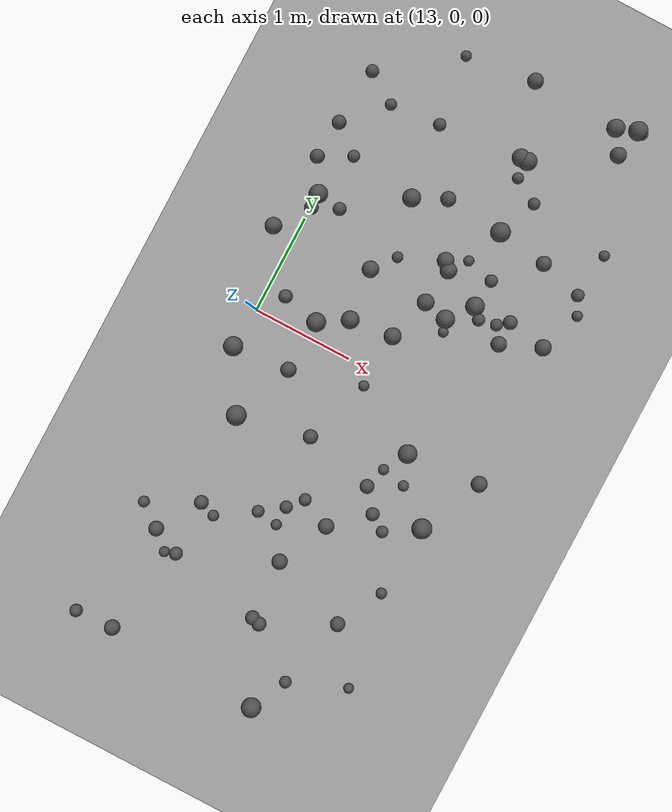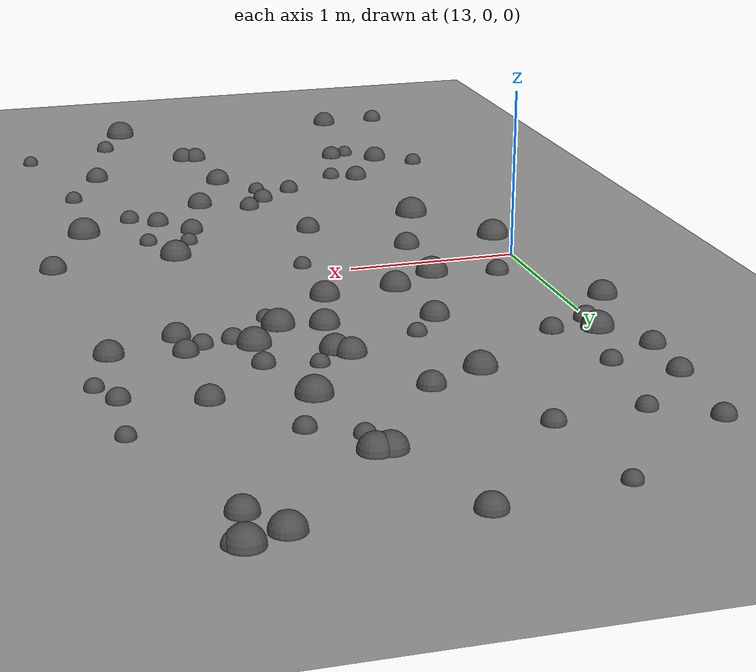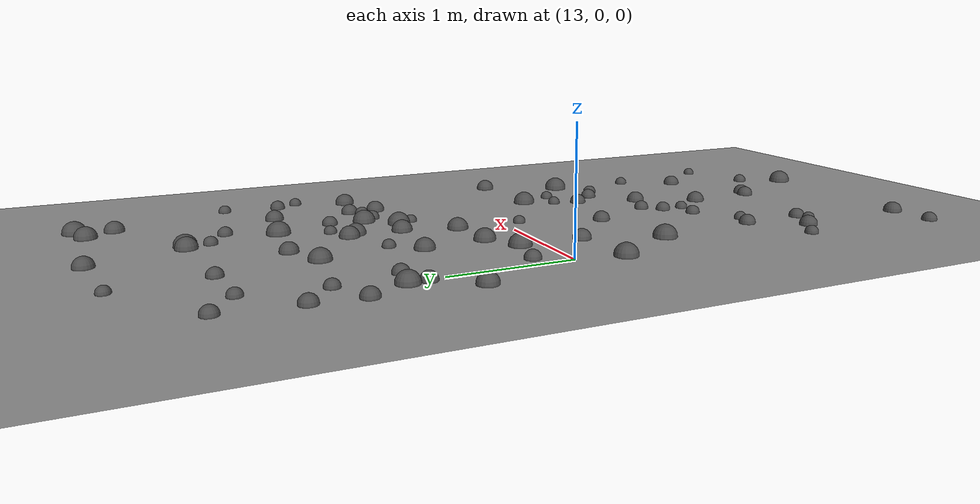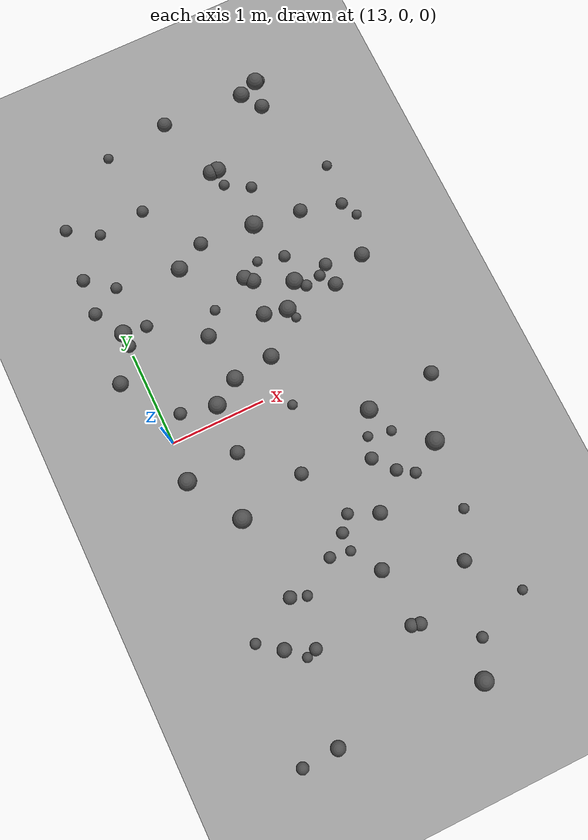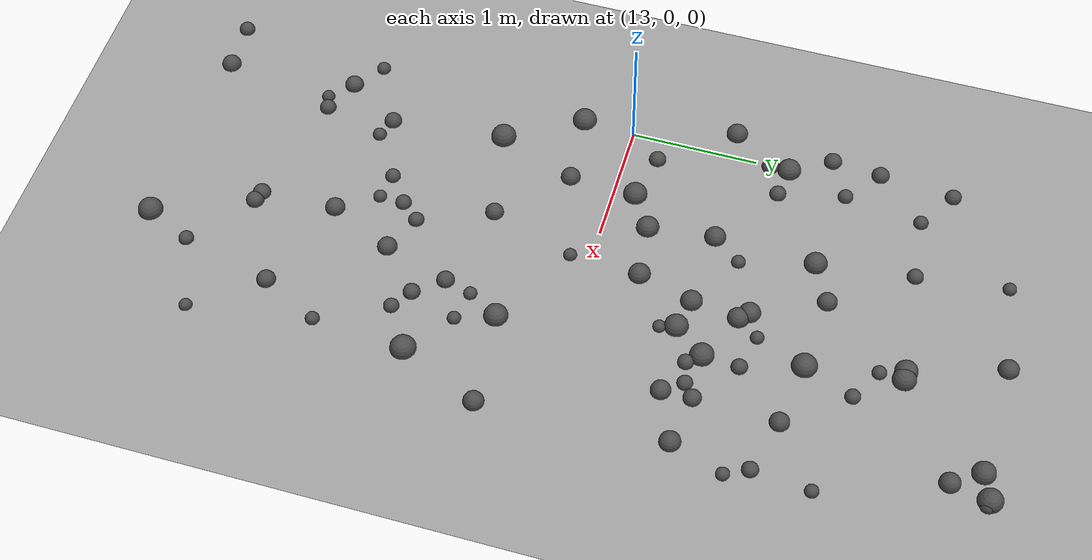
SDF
<sdf version="1.8">
 <world name="bumpy_world">
  <model name="ground_plane">
   <static>true</static>
   <link name="link">
    <collision name="collision">
     <geometry><plane><normal>0 0 1</normal><size>100 100</size></plane></geometry>
    </collision>
    <visual name="visual">
     <geometry><plane><normal>0 0 1</normal><size>100 100</size></plane></geometry>
     <material><ambient>0.6 0.6 0.6 1</ambient><diffuse>0.6 0.6 0.6 1</diffuse></material>
    </visual>
   </link>
  </model>
  <model name="bump_2">
   <static>true</static>
   <pose>13.304579363777297 -2.464975682810359 0.0 0 0 0</pose>
   <link name="link">
    <collision name="collision">
     <geometry><sphere><radius>0.051483868694990956</radius></sphere></geometry>
     <surface><friction><ode><mu>100.0</mu><mu2>100.0</mu2></ode></friction></surface>
    </collision>
    <visual name="visual">
     <geometry><sphere><radius>0.051483868694990956</radius></sphere></geometry>
     <material><ambient>0.3 0.3 0.3 1</ambient><diffuse>0.3 0.3 0.3 1</diffuse></material>
    </visual>
   </link>
  </model>
  <model name="bump_5">
   <static>true</static>
   <pose>14.562588807561559 2.482431439217339 0.0 0 0 0</pose>
   <link name="link">
    <collision name="collision">
     <geometry><sphere><radius>0.08768449537127662</radius></sphere></geometry>
     <surface><friction><ode><mu>100.0</mu><mu2>100.0</mu2></ode></friction></surface>
    </collision>
    <visual name="visual">
     <geometry><sphere><radius>0.08768449537127662</radius></sphere></geometry>
     <material><ambient>0.3 0.3 0.3 1</ambient><diffuse>0.3 0.3 0.3 1</diffuse></material>
    </visual>
   </link>
  </model>
  <model name="bump_21">
   <static>true</static>
   <pose>14.635420288345205 2.481698815405207 0.0 0 0 0</pose>
   <link name="link">
    <collision name="collision">
     <geometry><sphere><radius>0.09113718749873549</radius></sphere></geometry>
     <surface><friction><ode><mu>100.0</mu><mu2>100.0</mu2></ode></friction></surface>
    </collision>
    <visual name="visual">
     <geometry><sphere><radius>0.09113718749873549</radius></sphere></geometry>
     <material><ambient>0.3 0.3 0.3 1</ambient><diffuse>0.3 0.3 0.3 1</diffuse></material>
    </visual>
   </link>
  </model>
  <model name="bump_34">
   <static>true</static>
   <pose>15.211453152067746 1.0342373390313409 0.0 0 0 0</pose>
   <link name="link">
    <collision name="collision">
     <geometry><sphere><radius>0.06985104177228421</radius></sphere></geometry>
     <surface><friction><ode><mu>100.0</mu><mu2>100.0</mu2></ode></friction></surface>
    </collision>
    <visual name="visual">
     <geometry><sphere><radius>0.06985104177228421</radius></sphere></geometry>
     <material><ambient>0.3 0.3 0.3 1</ambient><diffuse>0.3 0.3 0.3 1</diffuse></material>
    </visual>
   </link>
  </model>
  <model name="bump_35">
   <static>true</static>
   <pose>15.387912402151585 -1.1148408915079688 0.0 0 0 0</pose>
   <link name="link">
    <collision name="collision">
     <geometry><sphere><radius>0.09988870792115631</radius></sphere></geometry>
     <surface><friction><ode><mu>100.0</mu><mu2>100.0</mu2></ode></friction></surface>
    </collision>
    <visual name="visual">
     <geometry><sphere><radius>0.09988870792115631</radius></sphere></geometry>
     <material><ambient>0.3 0.3 0.3 1</ambient><diffuse>0.3 0.3 0.3 1</diffuse></material>
    </visual>
   </link>
  </model>
  <model name="bump_41">
   <static>true</static>
   <pose>13.186478670259566 0.24808822148255016 0.0 0 0 0</pose>
   <link name="link">
    <collision name="collision">
     <geometry><sphere><radius>0.06720600954557636</radius></sphere></geometry>
     <surface><friction><ode><mu>100.0</mu><mu2>100.0</mu2></ode></friction></surface>
    </collision>
    <visual name="visual">
     <geometry><sphere><radius>0.06720600954557636</radius></sphere></geometry>
     <material><ambient>0.3 0.3 0.3 1</ambient><diffuse>0.3 0.3 0.3 1</diffuse></material>
    </visual>
   </link>
  </model>
  <model name="bump_42">
   <static>true</static>
   <pose>15.48329186325271 -2.7985686660390834 0.0 0 0 0</pose>
   <link name="link">
    <collision name="collision">
     <geometry><sphere><radius>0.0503309574699336</radius></sphere></geometry>
     <surface><friction><ode><mu>100.0</mu><mu2>100.0</mu2></ode></friction></surface>
    </collision>
    <visual name="visual">
     <geometry><sphere><radius>0.0503309574699336</radius></sphere></geometry>
     <material><ambient>0.3 0.3 0.3 1</ambient><diffuse>0.3 0.3 0.3 1</diffuse></material>
    </visual>
   </link>
  </model>
  <model name="bump_43">
   <static>true</static>
   <pose>14.028422960162406 -0.8341455465728265 0.0 0 0 0</pose>
   <link name="link">
    <collision name="collision">
     <geometry><sphere><radius>0.0718243421118471</radius></sphere></geometry>
     <surface><friction><ode><mu>100.0</mu><mu2>100.0</mu2></ode></friction></surface>
    </collision>
    <visual name="visual">
     <geometry><sphere><radius>0.0718243421118471</radius></sphere></geometry>
     <material><ambient>0.3 0.3 0.3 1</ambient><diffuse>0.3 0.3 0.3 1</diffuse></material>
    </visual>
   </link>
  </model>
  <model name="bump_54">
   <static>true</static>
   <pose>15.334166617906272 -1.8458696237207382 0.0 0 0 0</pose>
   <link name="link">
    <collision name="collision">
     <geometry><sphere><radius>0.05483595023516709</radius></sphere></geometry>
     <surface><friction><ode><mu>100.0</mu><mu2>100.0</mu2></ode></friction></surface>
    </collision>
    <visual name="visual">
     <geometry><sphere><radius>0.05483595023516709</radius></sphere></geometry>
     <material><ambient>0.3 0.3 0.3 1</ambient><diffuse>0.3 0.3 0.3 1</diffuse></material>
    </visual>
   </link>
  </model>
  <model name="bump_55">
   <static>true</static>
   <pose>14.452666457167581 1.1982974309997125 0.0 0 0 0</pose>
   <link name="link">
    <collision name="collision">
     <geometry><sphere><radius>0.08306297502154905</radius></sphere></geometry>
     <surface><friction><ode><mu>100.0</mu><mu2>100.0</mu2></ode></friction></surface>
    </collision>
    <visual name="visual">
     <geometry><sphere><radius>0.08306297502154905</radius></sphere></geometry>
     <material><ambient>0.3 0.3 0.3 1</ambient><diffuse>0.3 0.3 0.3 1</diffuse></material>
    </visual>
   </link>
  </model>
  <model name="bump_57">
   <static>true</static>
   <pose>13.81408618550087 1.6502830108134567 0.0 0 0 0</pose>
   <link name="link">
    <collision name="collision">
     <geometry><sphere><radius>0.08965262909356791</radius></sphere></geometry>
     <surface><friction><ode><mu>100.0</mu><mu2>100.0</mu2></ode></friction></surface>
    </collision>
    <visual name="visual">
     <geometry><sphere><radius>0.08965262909356791</radius></sphere></geometry>
     <material><ambient>0.3 0.3 0.3 1</ambient><diffuse>0.3 0.3 0.3 1</diffuse></material>
    </visual>
   </link>
  </model>
  <model name="bump_60">
   <static>true</static>
   <pose>15.438184745148275 3.2359624507849203 0.0 0 0 0</pose>
   <link name="link">
    <collision name="collision">
     <geometry><sphere><radius>0.09454059682721795</radius></sphere></geometry>
     <surface><friction><ode><mu>100.0</mu><mu2>100.0</mu2></ode></friction></surface>
    </collision>
    <visual name="visual">
     <geometry><sphere><radius>0.09454059682721795</radius></sphere></geometry>
     <material><ambient>0.3 0.3 0.3 1</ambient><diffuse>0.3 0.3 0.3 1</diffuse></material>
    </visual>
   </link>
  </model>
  <model name="bump_63">
   <static>true</static>
   <pose>13.218868417372912 2.3508512734720153 0.0 0 0 0</pose>
   <link name="link">
    <collision name="collision">
     <geometry><sphere><radius>0.05746723433186163</radius></sphere></geometry>
     <surface><friction><ode><mu>100.0</mu><mu2>100.0</mu2></ode></friction></surface>
    </collision>
    <visual name="visual">
     <geometry><sphere><radius>0.05746723433186163</radius></sphere></geometry>
     <material><ambient>0.3 0.3 0.3 1</ambient><diffuse>0.3 0.3 0.3 1</diffuse></material>
    </visual>
   </link>
  </model>
  <model name="bump_64">
   <static>true</static>
   <pose>12.764630342629564 0.793940911059722 0.0 0 0 0</pose>
   <link name="link">
    <collision name="collision">
     <geometry><sphere><radius>0.08375764279934095</radius></sphere></geometry>
     <surface><friction><ode><mu>100.0</mu><mu2>100.0</mu2></ode></friction></surface>
    </collision>
    <visual name="visual">
     <geometry><sphere><radius>0.08375764279934095</radius></sphere></geometry>
     <material><ambient>0.3 0.3 0.3 1</ambient><diffuse>0.3 0.3 0.3 1</diffuse></material>
    </visual>
   </link>
  </model>
  <model name="bump_65">
   <static>true</static>
   <pose>13.13478479729017 1.7444520159874166 0.0 0 0 0</pose>
   <link name="link">
    <collision name="collision">
     <geometry><sphere><radius>0.05983662861250227</radius></sphere></geometry>
     <surface><friction><ode><mu>100.0</mu><mu2>100.0</mu2></ode></friction></surface>
    </collision>
    <visual name="visual">
     <geometry><sphere><radius>0.05983662861250227</radius></sphere></geometry>
     <material><ambient>0.3 0.3 0.3 1</ambient><diffuse>0.3 0.3 0.3 1</diffuse></material>
    </visual>
   </link>
  </model>
  <model name="bump_69">
   <static>true</static>
   <pose>15.67469440505727 -0.4787279727878295 0.0 0 0 0</pose>
   <link name="link">
    <collision name="collision">
     <geometry><sphere><radius>0.07957818510238004</radius></sphere></geometry>
     <surface><friction><ode><mu>100.0</mu><mu2>100.0</mu2></ode></friction></surface>
    </collision>
    <visual name="visual">
     <geometry><sphere><radius>0.07957818510238004</radius></sphere></geometry>
     <material><ambient>0.3 0.3 0.3 1</ambient><diffuse>0.3 0.3 0.3 1</diffuse></material>
    </visual>
   </link>
  </model>
  <model name="bump_85">
   <static>true</static>
   <pose>14.862913255881049 1.3017778849326342 0.0 0 0 0</pose>
   <link name="link">
    <collision name="collision">
     <geometry><sphere><radius>0.06350283768746176</radius></sphere></geometry>
     <surface><friction><ode><mu>100.0</mu><mu2>100.0</mu2></ode></friction></surface>
    </collision>
    <visual name="visual">
     <geometry><sphere><radius>0.06350283768746176</radius></sphere></geometry>
     <material><ambient>0.3 0.3 0.3 1</ambient><diffuse>0.3 0.3 0.3 1</diffuse></material>
    </visual>
   </link>
  </model>
  <model name="bump_99">
   <static>true</static>
   <pose>15.663753866824214 1.5678359623143425 0.0 0 0 0</pose>
   <link name="link">
    <collision name="collision">
     <geometry><sphere><radius>0.06340787997014932</radius></sphere></geometry>
     <surface><friction><ode><mu>100.0</mu><mu2>100.0</mu2></ode></friction></surface>
    </collision>
    <visual name="visual">
     <geometry><sphere><radius>0.06340787997014932</radius></sphere></geometry>
     <material><ambient>0.3 0.3 0.3 1</ambient><diffuse>0.3 0.3 0.3 1</diffuse></material>
    </visual>
   </link>
  </model>
  <model name="bump_107">
   <static>true</static>
   <pose>14.274511832990909 0.389667066435889 0.0 0 0 0</pose>
   <link name="link">
    <collision name="collision">
     <geometry><sphere><radius>0.08554902811149388</radius></sphere></geometry>
     <surface><friction><ode><mu>100.0</mu><mu2>100.0</mu2></ode></friction></surface>
    </collision>
    <visual name="visual">
     <geometry><sphere><radius>0.08554902811149388</radius></sphere></geometry>
     <material><ambient>0.3 0.3 0.3 1</ambient><diffuse>0.3 0.3 0.3 1</diffuse></material>
    </visual>
   </link>
  </model>
  <model name="bump_108">
   <static>true</static>
   <pose>15.232243537992893 1.684075728611096 0.0 0 0 0</pose>
   <link name="link">
    <collision name="collision">
     <geometry><sphere><radius>0.07635202983187284</radius></sphere></geometry>
     <surface><friction><ode><mu>100.0</mu><mu2>100.0</mu2></ode></friction></surface>
    </collision>
    <visual name="visual">
     <geometry><sphere><radius>0.07635202983187284</radius></sphere></geometry>
     <material><ambient>0.3 0.3 0.3 1</ambient><diffuse>0.3 0.3 0.3 1</diffuse></material>
    </visual>
   </link>
  </model>
  <model name="bump_113">
   <static>true</static>
   <pose>13.961574808715845 1.0838914634828383 0.0 0 0 0</pose>
   <link name="link">
    <collision name="collision">
     <geometry><sphere><radius>0.054634948182921333</radius></sphere></geometry>
     <surface><friction><ode><mu>100.0</mu><mu2>100.0</mu2></ode></friction></surface>
    </collision>
    <visual name="visual">
     <geometry><sphere><radius>0.054634948182921333</radius></sphere></geometry>
     <material><ambient>0.3 0.3 0.3 1</ambient><diffuse>0.3 0.3 0.3 1</diffuse></material>
    </visual>
   </link>
  </model>
  <model name="bump_126">
   <static>true</static>
   <pose>12.818655350573785 -3.3600492460534577 0.0 0 0 0</pose>
   <link name="link">
    <collision name="collision">
     <geometry><sphere><radius>0.06295593325107585</radius></sphere></geometry>
     <surface><friction><ode><mu>100.0</mu><mu2>100.0</mu2></ode></friction></surface>
    </collision>
    <visual name="visual">
     <geometry><sphere><radius>0.06295593325107585</radius></sphere></geometry>
     <material><ambient>0.3 0.3 0.3 1</ambient><diffuse>0.3 0.3 0.3 1</diffuse></material>
    </visual>
   </link>
  </model>
  <model name="bump_144">
   <static>true</static>
   <pose>15.377639817423507 2.9405769459404185 0.0 0 0 0</pose>
   <link name="link">
    <collision name="collision">
     <geometry><sphere><radius>0.07989084572162503</radius></sphere></geometry>
     <surface><friction><ode><mu>100.0</mu><mu2>100.0</mu2></ode></friction></surface>
    </collision>
    <visual name="visual">
     <geometry><sphere><radius>0.07989084572162503</radius></sphere></geometry>
     <material><ambient>0.3 0.3 0.3 1</ambient><diffuse>0.3 0.3 0.3 1</diffuse></material>
    </visual>
   </link>
  </model>
  <model name="bump_146">
   <static>true</static>
   <pose>12.91044765947802 2.550384720034816 0.0 0 0 0</pose>
   <link name="link">
    <collision name="collision">
     <geometry><sphere><radius>0.06431557311115405</radius></sphere></geometry>
     <surface><friction><ode><mu>100.0</mu><mu2>100.0</mu2></ode></friction></surface>
    </collision>
    <visual name="visual">
     <geometry><sphere><radius>0.06431557311115405</radius></sphere></geometry>
     <material><ambient>0.3 0.3 0.3 1</ambient><diffuse>0.3 0.3 0.3 1</diffuse></material>
    </visual>
   </link>
  </model>
  <model name="bump_151">
   <static>true</static>
   <pose>15.211600516677752 0.7984085838441182 0.0 0 0 0</pose>
   <link name="link">
    <collision name="collision">
     <geometry><sphere><radius>0.07786546205712218</radius></sphere></geometry>
     <surface><friction><ode><mu>100.0</mu><mu2>100.0</mu2></ode></friction></surface>
    </collision>
    <visual name="visual">
     <geometry><sphere><radius>0.07786546205712218</radius></sphere></geometry>
     <material><ambient>0.3 0.3 0.3 1</ambient><diffuse>0.3 0.3 0.3 1</diffuse></material>
    </visual>
   </link>
  </model>
  <model name="bump_153">
   <static>true</static>
   <pose>13.397616392312187 -1.8809129246351564 0.0 0 0 0</pose>
   <link name="link">
    <collision name="collision">
     <geometry><sphere><radius>0.06932801616569285</radius></sphere></geometry>
     <surface><friction><ode><mu>100.0</mu><mu2>100.0</mu2></ode></friction></surface>
    </collision>
    <visual name="visual">
     <geometry><sphere><radius>0.06932801616569285</radius></sphere></geometry>
     <material><ambient>0.3 0.3 0.3 1</ambient><diffuse>0.3 0.3 0.3 1</diffuse></material>
    </visual>
   </link>
  </model>
  <model name="bump_160">
   <static>true</static>
   <pose>12.905443902621379 -2.131005338769942 0.0 0 0 0</pose>
   <link name="link">
    <collision name="collision">
     <geometry><sphere><radius>0.055433916751002926</radius></sphere></geometry>
     <surface><friction><ode><mu>100.0</mu><mu2>100.0</mu2></ode></friction></surface>
    </collision>
    <visual name="visual">
     <geometry><sphere><radius>0.055433916751002926</radius></sphere></geometry>
     <material><ambient>0.3 0.3 0.3 1</ambient><diffuse>0.3 0.3 0.3 1</diffuse></material>
    </visual>
   </link>
  </model>
  <model name="bump_164">
   <static>true</static>
   <pose>15.710055936573042 2.021050095629607 0.0 0 0 0</pose>
   <link name="link">
    <collision name="collision">
     <geometry><sphere><radius>0.05300539645282992</radius></sphere></geometry>
     <surface><friction><ode><mu>100.0</mu><mu2>100.0</mu2></ode></friction></surface>
    </collision>
    <visual name="visual">
     <geometry><sphere><radius>0.05300539645282992</radius></sphere></geometry>
     <material><ambient>0.3 0.3 0.3 1</ambient><diffuse>0.3 0.3 0.3 1</diffuse></material>
    </visual>
   </link>
  </model>
  <model name="bump_170">
   <static>true</static>
   <pose>14.56436548344256 -1.5239839542755553 0.0 0 0 0</pose>
   <link name="link">
    <collision name="collision">
     <geometry><sphere><radius>0.07723246333708228</radius></sphere></geometry>
     <surface><friction><ode><mu>100.0</mu><mu2>100.0</mu2></ode></friction></surface>
    </collision>
    <visual name="visual">
     <geometry><sphere><radius>0.07723246333708228</radius></sphere></geometry>
     <material><ambient>0.3 0.3 0.3 1</ambient><diffuse>0.3 0.3 0.3 1</diffuse></material>
    </visual>
   </link>
  </model>
  <model name="bump_171">
   <static>true</static>
   <pose>14.349427713573874 -2.6309994566620807 0.0 0 0 0</pose>
   <link name="link">
    <collision name="collision">
     <geometry><sphere><radius>0.069776981556739</radius></sphere></geometry>
     <surface><friction><ode><mu>100.0</mu><mu2>100.0</mu2></ode></friction></surface>
    </collision>
    <visual name="visual">
     <geometry><sphere><radius>0.069776981556739</radius></sphere></geometry>
     <material><ambient>0.3 0.3 0.3 1</ambient><diffuse>0.3 0.3 0.3 1</diffuse></material>
    </visual>
   </link>
  </model>
  <model name="bump_174">
   <static>true</static>
   <pose>14.628560285564314 2.29551151697558 0.0 0 0 0</pose>
   <link name="link">
    <collision name="collision">
     <geometry><sphere><radius>0.056184527835539455</radius></sphere></geometry>
     <surface><friction><ode><mu>100.0</mu><mu2>100.0</mu2></ode></friction></surface>
    </collision>
    <visual name="visual">
     <geometry><sphere><radius>0.056184527835539455</radius></sphere></geometry>
     <material><ambient>0.3 0.3 0.3 1</ambient><diffuse>0.3 0.3 0.3 1</diffuse></material>
    </visual>
   </link>
  </model>
  <model name="bump_183">
   <static>true</static>
   <pose>13.00322408736608 1.2679214516213815 0.0 0 0 0</pose>
   <link name="link">
    <collision name="collision">
     <geometry><sphere><radius>0.09179858185910925</radius></sphere></geometry>
     <surface><friction><ode><mu>100.0</mu><mu2>100.0</mu2></ode></friction></surface>
    </collision>
    <visual name="visual">
     <geometry><sphere><radius>0.09179858185910925</radius></sphere></geometry>
     <material><ambient>0.3 0.3 0.3 1</ambient><diffuse>0.3 0.3 0.3 1</diffuse></material>
    </visual>
   </link>
  </model>
  <model name="bump_196">
   <static>true</static>
   <pose>13.56145977385313 0.16610740427824044 0.0 0 0 0</pose>
   <link name="link">
    <collision name="collision">
     <geometry><sphere><radius>0.09392431282721053</radius></sphere></geometry>
     <surface><friction><ode><mu>100.0</mu><mu2>100.0</mu2></ode></friction></surface>
    </collision>
    <visual name="visual">
     <geometry><sphere><radius>0.09392431282721053</radius></sphere></geometry>
     <material><ambient>0.3 0.3 0.3 1</ambient><diffuse>0.3 0.3 0.3 1</diffuse></material>
    </visual>
   </link>
  </model>
  <model name="bump_200">
   <static>true</static>
   <pose>12.85816023100418 1.967423047812094 0.0 0 0 0</pose>
   <link name="link">
    <collision name="collision">
     <geometry><sphere><radius>0.06984092747619759</radius></sphere></geometry>
     <surface><friction><ode><mu>100.0</mu><mu2>100.0</mu2></ode></friction></surface>
    </collision>
    <visual name="visual">
     <geometry><sphere><radius>0.06984092747619759</radius></sphere></geometry>
     <material><ambient>0.3 0.3 0.3 1</ambient><diffuse>0.3 0.3 0.3 1</diffuse></material>
    </visual>
   </link>
  </model>
  <model name="bump_205">
   <static>true</static>
   <pose>14.917882351733125 -3.028884402515743 0.0 0 0 0</pose>
   <link name="link">
    <collision name="collision">
     <geometry><sphere><radius>0.05869193801538924</radius></sphere></geometry>
     <surface><friction><ode><mu>100.0</mu><mu2>100.0</mu2></ode></friction></surface>
    </collision>
    <visual name="visual">
     <geometry><sphere><radius>0.05869193801538924</radius></sphere></geometry>
     <material><ambient>0.3 0.3 0.3 1</ambient><diffuse>0.3 0.3 0.3 1</diffuse></material>
    </visual>
   </link>
  </model>
  <model name="bump_207">
   <static>true</static>
   <pose>14.685683490505259 0.6511373710820969 0.0 0 0 0</pose>
   <link name="link">
    <collision name="collision">
     <geometry><sphere><radius>0.05050446829365551</radius></sphere></geometry>
     <surface><friction><ode><mu>100.0</mu><mu2>100.0</mu2></ode></friction></surface>
    </collision>
    <visual name="visual">
     <geometry><sphere><radius>0.05050446829365551</radius></sphere></geometry>
     <material><ambient>0.3 0.3 0.3 1</ambient><diffuse>0.3 0.3 0.3 1</diffuse></material>
    </visual>
   </link>
  </model>
  <model name="bump_208">
   <static>true</static>
   <pose>14.904105871042805 -1.212422082100622 0.0 0 0 0</pose>
   <link name="link">
    <collision name="collision">
     <geometry><sphere><radius>0.06643979358483212</radius></sphere></geometry>
     <surface><friction><ode><mu>100.0</mu><mu2>100.0</mu2></ode></friction></surface>
    </collision>
    <visual name="visual">
     <geometry><sphere><radius>0.06643979358483212</radius></sphere></geometry>
     <material><ambient>0.3 0.3 0.3 1</ambient><diffuse>0.3 0.3 0.3 1</diffuse></material>
    </visual>
   </link>
  </model>
  <model name="bump_215">
   <static>true</static>
   <pose>13.91870229074468 -1.7021247262588268 0.0 0 0 0</pose>
   <link name="link">
    <collision name="collision">
     <geometry><sphere><radius>0.06008721851658436</radius></sphere></geometry>
     <surface><friction><ode><mu>100.0</mu><mu2>100.0</mu2></ode></friction></surface>
    </collision>
    <visual name="visual">
     <geometry><sphere><radius>0.06008721851658436</radius></sphere></geometry>
     <material><ambient>0.3 0.3 0.3 1</ambient><diffuse>0.3 0.3 0.3 1</diffuse></material>
    </visual>
   </link>
  </model>
  <model name="bump_219">
   <static>true</static>
   <pose>13.639230493992791 3.1011219052845966 0.0 0 0 0</pose>
   <link name="link">
    <collision name="collision">
     <geometry><sphere><radius>0.052718309214349474</radius></sphere></geometry>
     <surface><friction><ode><mu>100.0</mu><mu2>100.0</mu2></ode></friction></surface>
    </collision>
    <visual name="visual">
     <geometry><sphere><radius>0.052718309214349474</radius></sphere></geometry>
     <material><ambient>0.3 0.3 0.3 1</ambient><diffuse>0.3 0.3 0.3 1</diffuse></material>
    </visual>
   </link>
  </model>
  <model name="bump_220">
   <static>true</static>
   <pose>14.340661802969645 3.198470267648574 0.0 0 0 0</pose>
   <link name="link">
    <collision name="collision">
     <geometry><sphere><radius>0.07867467084618592</radius></sphere></geometry>
     <surface><friction><ode><mu>100.0</mu><mu2>100.0</mu2></ode></friction></surface>
    </collision>
    <visual name="visual">
     <geometry><sphere><radius>0.07867467084618592</radius></sphere></geometry>
     <material><ambient>0.3 0.3 0.3 1</ambient><diffuse>0.3 0.3 0.3 1</diffuse></material>
    </visual>
   </link>
  </model>
  <model name="bump_225">
   <static>true</static>
   <pose>13.30219223112528 -0.9848656019647679 0.0 0 0 0</pose>
   <link name="link">
    <collision name="collision">
     <geometry><sphere><radius>0.09906360600749513</radius></sphere></geometry>
     <surface><friction><ode><mu>100.0</mu><mu2>100.0</mu2></ode></friction></surface>
    </collision>
    <visual name="visual">
     <geometry><sphere><radius>0.09906360600749513</radius></sphere></geometry>
     <material><ambient>0.3 0.3 0.3 1</ambient><diffuse>0.3 0.3 0.3 1</diffuse></material>
    </visual>
   </link>
  </model>
  <model name="bump_226">
   <static>true</static>
   <pose>14.32740034427951 -2.0328950697422608 0.0 0 0 0</pose>
   <link name="link">
    <collision name="collision">
     <geometry><sphere><radius>0.07726516350579064</radius></sphere></geometry>
     <surface><friction><ode><mu>100.0</mu><mu2>100.0</mu2></ode></friction></surface>
    </collision>
    <visual name="visual">
     <geometry><sphere><radius>0.07726516350579064</radius></sphere></geometry>
     <material><ambient>0.3 0.3 0.3 1</ambient><diffuse>0.3 0.3 0.3 1</diffuse></material>
    </visual>
   </link>
  </model>
  <model name="bump_228">
   <static>true</static>
   <pose>14.797420567133177 -0.7842959416738546 0.0 0 0 0</pose>
   <link name="link">
    <collision name="collision">
     <geometry><sphere><radius>0.05273628326819661</radius></sphere></geometry>
     <surface><friction><ode><mu>100.0</mu><mu2>100.0</mu2></ode></friction></surface>
    </collision>
    <visual name="visual">
     <geometry><sphere><radius>0.05273628326819661</radius></sphere></geometry>
     <material><ambient>0.3 0.3 0.3 1</ambient><diffuse>0.3 0.3 0.3 1</diffuse></material>
    </visual>
   </link>
  </model>
  <model name="bump_230">
   <static>true</static>
   <pose>14.646156365657568 0.7715714820246813 0.0 0 0 0</pose>
   <link name="link">
    <collision name="collision">
     <geometry><sphere><radius>0.09207680654261187</radius></sphere></geometry>
     <surface><friction><ode><mu>100.0</mu><mu2>100.0</mu2></ode></friction></surface>
    </collision>
    <visual name="visual">
     <geometry><sphere><radius>0.09207680654261187</radius></sphere></geometry>
     <material><ambient>0.3 0.3 0.3 1</ambient><diffuse>0.3 0.3 0.3 1</diffuse></material>
    </visual>
   </link>
  </model>
  <model name="bump_235">
   <static>true</static>
   <pose>14.742061711349496 -3.3992904343239174 0.0 0 0 0</pose>
   <link name="link">
    <collision name="collision">
     <geometry><sphere><radius>0.09692465732270743</radius></sphere></geometry>
     <surface><friction><ode><mu>100.0</mu><mu2>100.0</mu2></ode></friction></surface>
    </collision>
    <visual name="visual">
     <geometry><sphere><radius>0.09692465732270743</radius></sphere></geometry>
     <material><ambient>0.3 0.3 0.3 1</ambient><diffuse>0.3 0.3 0.3 1</diffuse></material>
    </visual>
   </link>
  </model>
  <model name="bump_249">
   <static>true</static>
   <pose>14.25236633155413 -0.1614532663331092 0.0 0 0 0</pose>
   <link name="link">
    <collision name="collision">
     <geometry><sphere><radius>0.05226436937535512</radius></sphere></geometry>
     <surface><friction><ode><mu>100.0</mu><mu2>100.0</mu2></ode></friction></surface>
    </collision>
    <visual name="visual">
     <geometry><sphere><radius>0.05226436937535512</radius></sphere></geometry>
     <material><ambient>0.3 0.3 0.3 1</ambient><diffuse>0.3 0.3 0.3 1</diffuse></material>
    </visual>
   </link>
  </model>
  <model name="bump_250">
   <static>true</static>
   <pose>12.965273161993293 -0.4104748666189715 0.0 0 0 0</pose>
   <link name="link">
    <collision name="collision">
     <geometry><sphere><radius>0.09555259795938327</radius></sphere></geometry>
     <surface><friction><ode><mu>100.0</mu><mu2>100.0</mu2></ode></friction></surface>
    </collision>
    <visual name="visual">
     <geometry><sphere><radius>0.09555259795938327</radius></sphere></geometry>
     <material><ambient>0.3 0.3 0.3 1</ambient><diffuse>0.3 0.3 0.3 1</diffuse></material>
    </visual>
   </link>
  </model>
  <model name="bump_254">
   <static>true</static>
   <pose>14.879746485744088 2.14826385895011 0.0 0 0 0</pose>
   <link name="link">
    <collision name="collision">
     <geometry><sphere><radius>0.05998405386626018</radius></sphere></geometry>
     <surface><friction><ode><mu>100.0</mu><mu2>100.0</mu2></ode></friction></surface>
    </collision>
    <visual name="visual">
     <geometry><sphere><radius>0.05998405386626018</radius></sphere></geometry>
     <material><ambient>0.3 0.3 0.3 1</ambient><diffuse>0.3 0.3 0.3 1</diffuse></material>
    </visual>
   </link>
  </model>
  <model name="bump_261">
   <static>true</static>
   <pose>14.130579561529313 1.8055096742767098 0.0 0 0 0</pose>
   <link name="link">
    <collision name="collision">
     <geometry><sphere><radius>0.07575058993691369</radius></sphere></geometry>
     <surface><friction><ode><mu>100.0</mu><mu2>100.0</mu2></ode></friction></surface>
    </collision>
    <visual name="visual">
     <geometry><sphere><radius>0.07575058993691369</radius></sphere></geometry>
     <material><ambient>0.3 0.3 0.3 1</ambient><diffuse>0.3 0.3 0.3 1</diffuse></material>
    </visual>
   </link>
  </model>
  <model name="bump_264">
   <static>true</static>
   <pose>14.401776288934256 0.8266649487926472 0.0 0 0 0</pose>
   <link name="link">
    <collision name="collision">
     <geometry><sphere><radius>0.08413756923844083</radius></sphere></geometry>
     <surface><friction><ode><mu>100.0</mu><mu2>100.0</mu2></ode></friction></surface>
    </collision>
    <visual name="visual">
     <geometry><sphere><radius>0.08413756923844083</radius></sphere></geometry>
     <material><ambient>0.3 0.3 0.3 1</ambient><diffuse>0.3 0.3 0.3 1</diffuse></material>
    </visual>
   </link>
  </model>
  <model name="bump_275">
   <static>true</static>
   <pose>14.26615498016181 -1.3923156568711468 0.0 0 0 0</pose>
   <link name="link">
    <collision name="collision">
     <geometry><sphere><radius>0.061602840151927934</radius></sphere></geometry>
     <surface><friction><ode><mu>100.0</mu><mu2>100.0</mu2></ode></friction></surface>
    </collision>
    <visual name="visual">
     <geometry><sphere><radius>0.061602840151927934</radius></sphere></geometry>
     <material><ambient>0.3 0.3 0.3 1</ambient><diffuse>0.3 0.3 0.3 1</diffuse></material>
    </visual>
   </link>
  </model>
  <model name="bump_277">
   <static>true</static>
   <pose>15.101587528308746 -2.303361884370547 0.0 0 0 0</pose>
   <link name="link">
    <collision name="collision">
     <geometry><sphere><radius>0.0731242300203519</radius></sphere></geometry>
     <surface><friction><ode><mu>100.0</mu><mu2>100.0</mu2></ode></friction></surface>
    </collision>
    <visual name="visual">
     <geometry><sphere><radius>0.0731242300203519</radius></sphere></geometry>
     <material><ambient>0.3 0.3 0.3 1</ambient><diffuse>0.3 0.3 0.3 1</diffuse></material>
    </visual>
   </link>
  </model>
  <model name="bump_278">
   <static>true</static>
   <pose>14.93071498608423 -0.5424574617700291 0.0 0 0 0</pose>
   <link name="link">
    <collision name="collision">
     <geometry><sphere><radius>0.09302144035214624</radius></sphere></geometry>
     <surface><friction><ode><mu>100.0</mu><mu2>100.0</mu2></ode></friction></surface>
    </collision>
    <visual name="visual">
     <geometry><sphere><radius>0.09302144035214624</radius></sphere></geometry>
     <material><ambient>0.3 0.3 0.3 1</ambient><diffuse>0.3 0.3 0.3 1</diffuse></material>
    </visual>
   </link>
  </model>
  <model name="bump_282">
   <static>true</static>
   <pose>13.005796390664326 1.1180034289292369 0.0 0 0 0</pose>
   <link name="link">
    <collision name="collision">
     <geometry><sphere><radius>0.06859186465222092</radius></sphere></geometry>
     <surface><friction><ode><mu>100.0</mu><mu2>100.0</mu2></ode></friction></surface>
    </collision>
    <visual name="visual">
     <geometry><sphere><radius>0.06859186465222092</radius></sphere></geometry>
     <material><ambient>0.3 0.3 0.3 1</ambient><diffuse>0.3 0.3 0.3 1</diffuse></material>
    </visual>
   </link>
  </model>
  <model name="bump_286">
   <static>true</static>
   <pose>14.138749182286281 -1.5398158090922553 0.0 0 0 0</pose>
   <link name="link">
    <collision name="collision">
     <geometry><sphere><radius>0.06275578247235476</radius></sphere></geometry>
     <surface><friction><ode><mu>100.0</mu><mu2>100.0</mu2></ode></friction></surface>
    </collision>
    <visual name="visual">
     <geometry><sphere><radius>0.06275578247235476</radius></sphere></geometry>
     <material><ambient>0.3 0.3 0.3 1</ambient><diffuse>0.3 0.3 0.3 1</diffuse></material>
    </visual>
   </link>
  </model>
  <model name="bump_290">
   <static>true</static>
   <pose>15.038641751111571 -0.8338771115521886 0.0 0 0 0</pose>
   <link name="link">
    <collision name="collision">
     <geometry><sphere><radius>0.05314614338099336</radius></sphere></geometry>
     <surface><friction><ode><mu>100.0</mu><mu2>100.0</mu2></ode></friction></surface>
    </collision>
    <visual name="visual">
     <geometry><sphere><radius>0.05314614338099336</radius></sphere></geometry>
     <material><ambient>0.3 0.3 0.3 1</ambient><diffuse>0.3 0.3 0.3 1</diffuse></material>
    </visual>
   </link>
  </model>
  <model name="bump_292">
   <static>true</static>
   <pose>13.84026121048789 0.3394384782213309 0.0 0 0 0</pose>
   <link name="link">
    <collision name="collision">
     <geometry><sphere><radius>0.08907368727125832</radius></sphere></geometry>
     <surface><friction><ode><mu>100.0</mu><mu2>100.0</mu2></ode></friction></surface>
    </collision>
    <visual name="visual">
     <geometry><sphere><radius>0.08907368727125832</radius></sphere></geometry>
     <material><ambient>0.3 0.3 0.3 1</ambient><diffuse>0.3 0.3 0.3 1</diffuse></material>
    </visual>
   </link>
  </model>
  <model name="bump_301">
   <static>true</static>
   <pose>15.477555940687367 3.22800103115328 0.0 0 0 0</pose>
   <link name="link">
    <collision name="collision">
     <geometry><sphere><radius>0.06430574338114328</radius></sphere></geometry>
     <surface><friction><ode><mu>100.0</mu><mu2>100.0</mu2></ode></friction></surface>
    </collision>
    <visual name="visual">
     <geometry><sphere><radius>0.06430574338114328</radius></sphere></geometry>
     <material><ambient>0.3 0.3 0.3 1</ambient><diffuse>0.3 0.3 0.3 1</diffuse></material>
    </visual>
   </link>
  </model>
  <model name="bump_304">
   <static>true</static>
   <pose>14.839781538229733 1.0139858361574516 0.0 0 0 0</pose>
   <link name="link">
    <collision name="collision">
     <geometry><sphere><radius>0.09316314939511268</radius></sphere></geometry>
     <surface><friction><ode><mu>100.0</mu><mu2>100.0</mu2></ode></friction></surface>
    </collision>
    <visual name="visual">
     <geometry><sphere><radius>0.09316314939511268</radius></sphere></geometry>
     <material><ambient>0.3 0.3 0.3 1</ambient><diffuse>0.3 0.3 0.3 1</diffuse></material>
    </visual>
   </link>
  </model>
  <model name="bump_309">
   <static>true</static>
   <pose>14.732408776135594 -1.0010095534741157 0.0 0 0 0</pose>
   <link name="link">
    <collision name="collision">
     <geometry><sphere><radius>0.06965044747620872</radius></sphere></geometry>
     <surface><friction><ode><mu>100.0</mu><mu2>100.0</mu2></ode></friction></surface>
    </collision>
    <visual name="visual">
     <geometry><sphere><radius>0.06965044747620872</radius></sphere></geometry>
     <material><ambient>0.3 0.3 0.3 1</ambient><diffuse>0.3 0.3 0.3 1</diffuse></material>
    </visual>
   </link>
  </model>
  <model name="bump_314">
   <static>true</static>
   <pose>15.234655348889982 3.158951446134359 0.0 0 0 0</pose>
   <link name="link">
    <collision name="collision">
     <geometry><sphere><radius>0.08906772953890879</radius></sphere></geometry>
     <surface><friction><ode><mu>100.0</mu><mu2>100.0</mu2></ode></friction></surface>
    </collision>
    <visual name="visual">
     <geometry><sphere><radius>0.08906772953890879</radius></sphere></geometry>
     <material><ambient>0.3 0.3 0.3 1</ambient><diffuse>0.3 0.3 0.3 1</diffuse></material>
    </visual>
   </link>
  </model>
  <model name="bump_318">
   <static>true</static>
   <pose>15.104761382580739 0.952161114415107 0.0 0 0 0</pose>
   <link name="link">
    <collision name="collision">
     <geometry><sphere><radius>0.06045496779023754</radius></sphere></geometry>
     <surface><friction><ode><mu>100.0</mu><mu2>100.0</mu2></ode></friction></surface>
    </collision>
    <visual name="visual">
     <geometry><sphere><radius>0.06045496779023754</radius></sphere></geometry>
     <material><ambient>0.3 0.3 0.3 1</ambient><diffuse>0.3 0.3 0.3 1</diffuse></material>
    </visual>
   </link>
  </model>
  <model name="bump_319">
   <static>true</static>
   <pose>15.064934620963975 -1.3185122378141574 0.0 0 0 0</pose>
   <link name="link">
    <collision name="collision">
     <geometry><sphere><radius>0.05984187289019416</radius></sphere></geometry>
     <surface><friction><ode><mu>100.0</mu><mu2>100.0</mu2></ode></friction></surface>
    </collision>
    <visual name="visual">
     <geometry><sphere><radius>0.05984187289019416</radius></sphere></geometry>
     <material><ambient>0.3 0.3 0.3 1</ambient><diffuse>0.3 0.3 0.3 1</diffuse></material>
    </visual>
   </link>
  </model>
  <model name="bump_324">
   <static>true</static>
   <pose>13.539701113855347 -0.36233762173833295 0.0 0 0 0</pose>
   <link name="link">
    <collision name="collision">
     <geometry><sphere><radius>0.07654285335972387</radius></sphere></geometry>
     <surface><friction><ode><mu>100.0</mu><mu2>100.0</mu2></ode></friction></surface>
    </collision>
    <visual name="visual">
     <geometry><sphere><radius>0.07654285335972387</radius></sphere></geometry>
     <material><ambient>0.3 0.3 0.3 1</ambient><diffuse>0.3 0.3 0.3 1</diffuse></material>
    </visual>
   </link>
  </model>
  <model name="bump_334">
   <static>true</static>
   <pose>12.825623782923664 1.5807967624793182 0.0 0 0 0</pose>
   <link name="link">
    <collision name="collision">
     <geometry><sphere><radius>0.07051823187474969</radius></sphere></geometry>
     <surface><friction><ode><mu>100.0</mu><mu2>100.0</mu2></ode></friction></surface>
    </collision>
    <visual name="visual">
     <geometry><sphere><radius>0.07051823187474969</radius></sphere></geometry>
     <material><ambient>0.3 0.3 0.3 1</ambient><diffuse>0.3 0.3 0.3 1</diffuse></material>
    </visual>
   </link>
  </model>
  <model name="bump_336">
   <static>true</static>
   <pose>15.603192501009286 0.9677437819326915 0.0 0 0 0</pose>
   <link name="link">
    <collision name="collision">
     <geometry><sphere><radius>0.081996122984791</radius></sphere></geometry>
     <surface><friction><ode><mu>100.0</mu><mu2>100.0</mu2></ode></friction></surface>
    </collision>
    <visual name="visual">
     <geometry><sphere><radius>0.081996122984791</radius></sphere></geometry>
     <material><ambient>0.3 0.3 0.3 1</ambient><diffuse>0.3 0.3 0.3 1</diffuse></material>
    </visual>
   </link>
  </model>
  <model name="bump_350">
   <static>true</static>
   <pose>14.432753836385409 -2.6550023483211036 0.0 0 0 0</pose>
   <link name="link">
    <collision name="collision">
     <geometry><sphere><radius>0.07037501023857992</radius></sphere></geometry>
     <surface><friction><ode><mu>100.0</mu><mu2>100.0</mu2></ode></friction></surface>
    </collision>
    <visual name="visual">
     <geometry><sphere><radius>0.07037501023857992</radius></sphere></geometry>
     <material><ambient>0.3 0.3 0.3 1</ambient><diffuse>0.3 0.3 0.3 1</diffuse></material>
    </visual>
   </link>
  </model>
  <model name="bump_356">
   <static>true</static>
   <pose>13.252224635546725 1.231962420219217 0.0 0 0 0</pose>
   <link name="link">
    <collision name="collision">
     <geometry><sphere><radius>0.0654615694490066</radius></sphere></geometry>
     <surface><friction><ode><mu>100.0</mu><mu2>100.0</mu2></ode></friction></surface>
    </collision>
    <visual name="visual">
     <geometry><sphere><radius>0.0654615694490066</radius></sphere></geometry>
     <material><ambient>0.3 0.3 0.3 1</ambient><diffuse>0.3 0.3 0.3 1</diffuse></material>
    </visual>
   </link>
  </model>
  <model name="bump_357">
   <static>true</static>
   <pose>14.58272914179814 1.3718795041746814 0.0 0 0 0</pose>
   <link name="link">
    <collision name="collision">
     <geometry><sphere><radius>0.05257887676307207</radius></sphere></geometry>
     <surface><friction><ode><mu>100.0</mu><mu2>100.0</mu2></ode></friction></surface>
    </collision>
    <visual name="visual">
     <geometry><sphere><radius>0.05257887676307207</radius></sphere></geometry>
     <material><ambient>0.3 0.3 0.3 1</ambient><diffuse>0.3 0.3 0.3 1</diffuse></material>
    </visual>
   </link>
  </model>
  <model name="bump_361">
   <static>true</static>
   <pose>14.722591118477105 1.7576093972853375 0.0 0 0 0</pose>
   <link name="link">
    <collision name="collision">
     <geometry><sphere><radius>0.09776752484279505</radius></sphere></geometry>
     <surface><friction><ode><mu>100.0</mu><mu2>100.0</mu2></ode></friction></surface>
    </collision>
    <visual name="visual">
     <geometry><sphere><radius>0.09776752484279505</radius></sphere></geometry>
     <material><ambient>0.3 0.3 0.3 1</ambient><diffuse>0.3 0.3 0.3 1</diffuse></material>
    </visual>
   </link>
  </model>
  <model name="bump_369">
   <static>true</static>
   <pose>13.785151359245228 0.8596807534887274 0.0 0 0 0</pose>
   <link name="link">
    <collision name="collision">
     <geometry><sphere><radius>0.08257568146840064</radius></sphere></geometry>
     <surface><friction><ode><mu>100.0</mu><mu2>100.0</mu2></ode></friction></surface>
    </collision>
    <visual name="visual">
     <geometry><sphere><radius>0.08257568146840064</radius></sphere></geometry>
     <material><ambient>0.3 0.3 0.3 1</ambient><diffuse>0.3 0.3 0.3 1</diffuse></material>
    </visual>
   </link>
  </model>
  <model name="bump_372">
   <static>true</static>
   <pose>13.20200319034723 -3.3438209130663044 0.0 0 0 0</pose>
   <link name="link">
    <collision name="collision">
     <geometry><sphere><radius>0.07683847692799534</radius></sphere></geometry>
     <surface><friction><ode><mu>100.0</mu><mu2>100.0</mu2></ode></friction></surface>
    </collision>
    <visual name="visual">
     <geometry><sphere><radius>0.07683847692799534</radius></sphere></geometry>
     <material><ambient>0.3 0.3 0.3 1</ambient><diffuse>0.3 0.3 0.3 1</diffuse></material>
    </visual>
   </link>
  </model>
  <model name="bump_376">
   <static>true</static>
   <pose>14.931191848228053 0.9151389852204499 0.0 0 0 0</pose>
   <link name="link">
    <collision name="collision">
     <geometry><sphere><radius>0.06195358340977556</radius></sphere></geometry>
     <surface><friction><ode><mu>100.0</mu><mu2>100.0</mu2></ode></friction></surface>
    </collision>
    <visual name="visual">
     <geometry><sphere><radius>0.06195358340977556</radius></sphere></geometry>
     <material><ambient>0.3 0.3 0.3 1</ambient><diffuse>0.3 0.3 0.3 1</diffuse></material>
    </visual>
   </link>
  </model>
  <model name="bump_379">
   <static>true</static>
   <pose>14.132727535607767 -1.7335115167807003 0.0 0 0 0</pose>
   <link name="link">
    <collision name="collision">
     <geometry><sphere><radius>0.05250483289279138</radius></sphere></geometry>
     <surface><friction><ode><mu>100.0</mu><mu2>100.0</mu2></ode></friction></surface>
    </collision>
    <visual name="visual">
     <geometry><sphere><radius>0.05250483289279138</radius></sphere></geometry>
     <material><ambient>0.3 0.3 0.3 1</ambient><diffuse>0.3 0.3 0.3 1</diffuse></material>
    </visual>
   </link>
  </model>
  <model name="bump_387">
   <static>true</static>
   <pose>15.751523167127093 1.3895346537039588 0.0 0 0 0</pose>
   <link name="link">
    <collision name="collision">
     <geometry><sphere><radius>0.0529829853406953</radius></sphere></geometry>
     <surface><friction><ode><mu>100.0</mu><mu2>100.0</mu2></ode></friction></surface>
    </collision>
    <visual name="visual">
     <geometry><sphere><radius>0.0529829853406953</radius></sphere></geometry>
     <material><ambient>0.3 0.3 0.3 1</ambient><diffuse>0.3 0.3 0.3 1</diffuse></material>
    </visual>
   </link>
  </model>
  <model name="bump_389">
   <static>true</static>
   <pose>14.384986199418112 1.270494520280054 0.0 0 0 0</pose>
   <link name="link">
    <collision name="collision">
     <geometry><sphere><radius>0.08299194940888584</radius></sphere></geometry>
     <surface><friction><ode><mu>100.0</mu><mu2>100.0</mu2></ode></friction></surface>
    </collision>
    <visual name="visual">
     <geometry><sphere><radius>0.08299194940888584</radius></sphere></geometry>
     <material><ambient>0.3 0.3 0.3 1</ambient><diffuse>0.3 0.3 0.3 1</diffuse></material>
    </visual>
   </link>
  </model>
  <model name="bump_391">
   <static>true</static>
   <pose>13.411775014832559 -2.4294340097091736 0.0 0 0 0</pose>
   <link name="link">
    <collision name="collision">
     <geometry><sphere><radius>0.06540126060821325</radius></sphere></geometry>
     <surface><friction><ode><mu>100.0</mu><mu2>100.0</mu2></ode></friction></surface>
    </collision>
    <visual name="visual">
     <geometry><sphere><radius>0.06540126060821325</radius></sphere></geometry>
     <material><ambient>0.3 0.3 0.3 1</ambient><diffuse>0.3 0.3 0.3 1</diffuse></material>
    </visual>
   </link>
  </model>
  <model name="bump_392">
   <static>true</static>
   <pose>13.723905693272362 2.39826391078286 0.0 0 0 0</pose>
   <link name="link">
    <collision name="collision">
     <geometry><sphere><radius>0.06329231553197412</radius></sphere></geometry>
     <surface><friction><ode><mu>100.0</mu><mu2>100.0</mu2></ode></friction></surface>
    </collision>
    <visual name="visual">
     <geometry><sphere><radius>0.06329231553197412</radius></sphere></geometry>
     <material><ambient>0.3 0.3 0.3 1</ambient><diffuse>0.3 0.3 0.3 1</diffuse></material>
    </visual>
   </link>
  </model>
  <model name="bump_398">
   <static>true</static>
   <pose>13.557524005598019 -1.9390305661769647 0.0 0 0 0</pose>
   <link name="link">
    <collision name="collision">
     <geometry><sphere><radius>0.05465997702096529</radius></sphere></geometry>
     <surface><friction><ode><mu>100.0</mu><mu2>100.0</mu2></ode></friction></surface>
    </collision>
    <visual name="visual">
     <geometry><sphere><radius>0.05465997702096529</radius></sphere></geometry>
     <material><ambient>0.3 0.3 0.3 1</ambient><diffuse>0.3 0.3 0.3 1</diffuse></material>
    </visual>
   </link>
  </model>
  <model name="bump_399">
   <static>true</static>
   <pose>13.131204606497935 -2.305237343708583 0.0 0 0 0</pose>
   <link name="link">
    <collision name="collision">
     <geometry><sphere><radius>0.07443188646974698</radius></sphere></geometry>
     <surface><friction><ode><mu>100.0</mu><mu2>100.0</mu2></ode></friction></surface>
    </collision>
    <visual name="visual">
     <geometry><sphere><radius>0.07443188646974698</radius></sphere></geometry>
     <material><ambient>0.3 0.3 0.3 1</ambient><diffuse>0.3 0.3 0.3 1</diffuse></material>
    </visual>
   </link>
  </model>
 </world>
</sdf>
